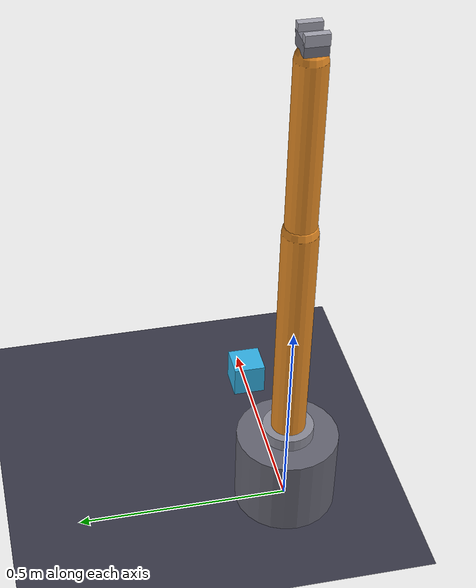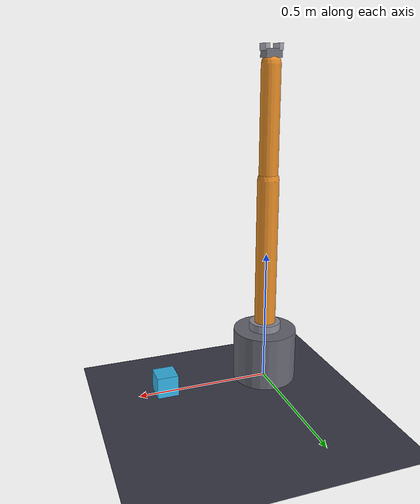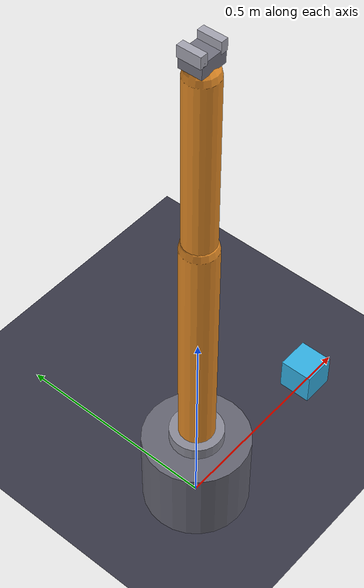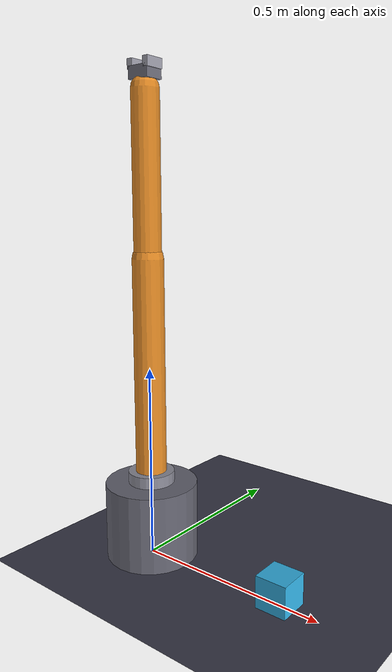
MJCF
<mujoco model="robotic_arm">
  <option gravity="0 0 -9.81" timestep="0.005"/>
  <default>
    <joint damping="2" armature="0.1"/>
    <geom friction="0.8 0.02 0.02" condim="3"/>
  </default>
  <worldbody>
    <light pos="0 0 5" diffuse="0.9 0.9 0.9"/>
    <geom name="floor" type="plane" size="5 5 0.1" rgba="0.22 0.22 0.28 1"/>
    <!-- Target object -->
    <body name="target" pos="0.4 0 0.04">
      <freejoint/>
      <geom type="box" size="0.04 0.04 0.04" rgba="0.2 0.7 0.9 1" mass="0.1"/>
    </body>
    <!-- Base -->
    <body name="base" pos="0 0 0.1">
      <geom type="cylinder" size="0.12 0.1" rgba="0.4 0.4 0.45 1" mass="8"/>
      <!-- Shoulder -->
      <body name="shoulder" pos="0 0 0.1">
        <joint name="base_rotate" type="hinge" axis="0 0 1" damping="3" range="-180 180"/>
        <geom type="cylinder" size="0.06 0.03" rgba="0.55 0.55 0.6 1" mass="1.5"/>
        <!-- Upper arm -->
        <body name="upper_arm" pos="0 0 0.03">
          <joint name="shoulder_pitch" type="hinge" axis="0 1 0" range="-90 90" damping="2"/>
          <geom type="capsule" fromto="0 0 0 0 0 0.55" size="0.04"
                rgba="0.9 0.55 0.15 1" mass="2.5"/>
          <!-- Forearm -->
          <body name="forearm" pos="0 0 0.55">
            <joint name="elbow_pitch" type="hinge" axis="0 1 0" range="-135 0" damping="1.5"/>
            <geom type="capsule" fromto="0 0 0 0 0 0.4" size="0.035"
                  rgba="0.9 0.55 0.15 1" mass="1.5"/>
            <!-- Wrist -->
            <body name="wrist" pos="0 0 0.4">
              <joint name="wrist_rotate" type="hinge" axis="0 0 1"
                     range="-180 180" damping="0.5"/>
              <geom type="sphere" size="0.03" rgba="0.5 0.5 0.55 1" mass="0.4"/>
              <!-- Gripper -->
              <body name="gripper_base" pos="0 0 0.035">
                <geom type="box" size="0.03 0.025 0.015"
                      rgba="0.45 0.45 0.5 1" mass="0.2"/>
                <body name="l_finger" pos="-0.025 0 0.02">
                  <joint name="l_grip" type="slide" axis="0 1 0" range="-0.03 0.03"/>
                  <geom type="box" size="0.008 0.025 0.012"
                        rgba="0.65 0.65 0.7 1" mass="0.05"/>
                </body>
                <body name="r_finger" pos="0.025 0 0.02">
                  <joint name="r_grip" type="slide" axis="0 1 0" range="-0.03 0.03"/>
                  <geom type="box" size="0.008 0.025 0.012"
                        rgba="0.65 0.65 0.7 1" mass="0.05"/>
                </body>
              </body>
            </body>
          </body>
        </body>
      </body>
    </body>
  </worldbody>
  <actuator>
    <motor name="base_m" joint="base_rotate" ctrlrange="-40 40" ctrllimited="true"/>
    <motor name="shoulder_m" joint="shoulder_pitch" ctrlrange="-60 60" ctrllimited="true"/>
    <motor name="elbow_m" joint="elbow_pitch" ctrlrange="-50 50" ctrllimited="true"/>
    <motor name="wrist_m" joint="wrist_rotate" ctrlrange="-15 15" ctrllimited="true"/>
    <motor name="l_grip_m" joint="l_grip" ctrlrange="-1 1" ctrllimited="true"/>
    <motor name="r_grip_m" joint="r_grip" ctrlrange="-1 1" ctrllimited="true"/>
  </actuator>
  <sensor>
    <jointpos name="base_pos" joint="base_rotate"/>
    <jointpos name="shoulder_pos" joint="shoulder_pitch"/>
    <jointpos name="elbow_pos" joint="elbow_pitch"/>
    <jointpos name="wrist_pos" joint="wrist_rotate"/>
    <framepos name="end_effector_pos" objtype="body" objname="gripper_base"/>
    <framelinvel name="end_effector_vel" objtype="body" objname="gripper_base"/>
    <actuatorfrc name="shoulder_frc" actuator="shoulder_m"/>
    <actuatorfrc name="elbow_frc" actuator="elbow_m"/>
  </sensor>
</mujoco>
